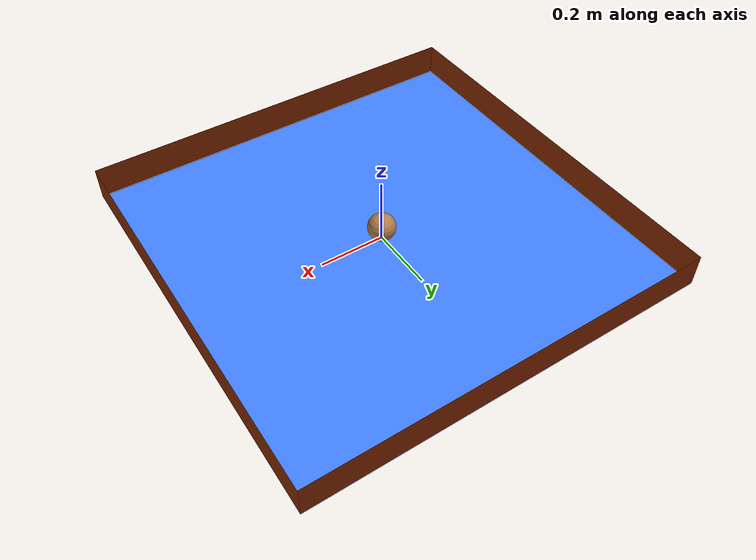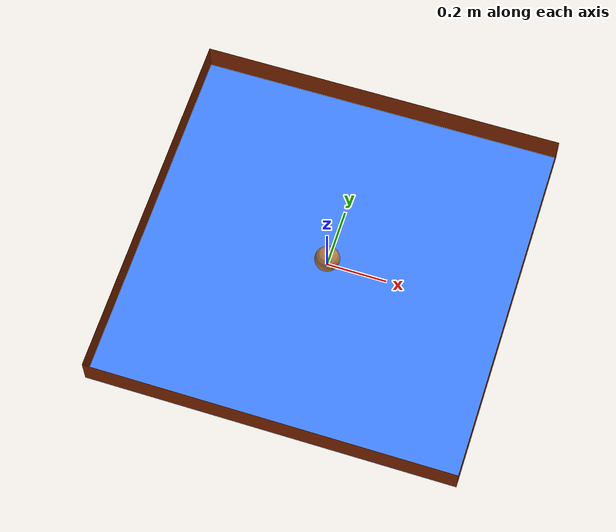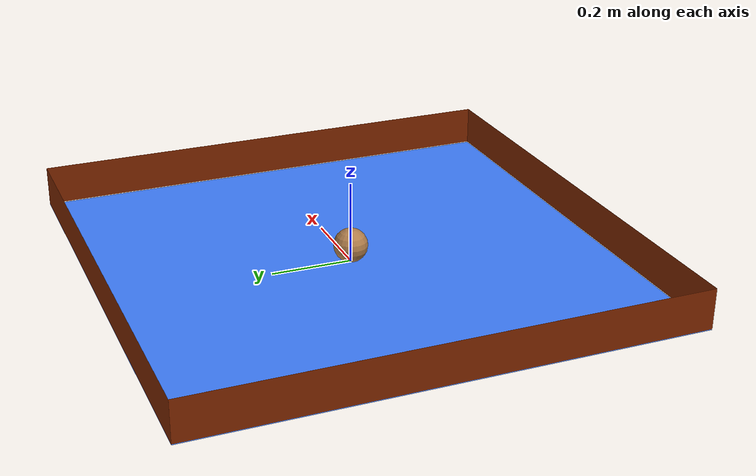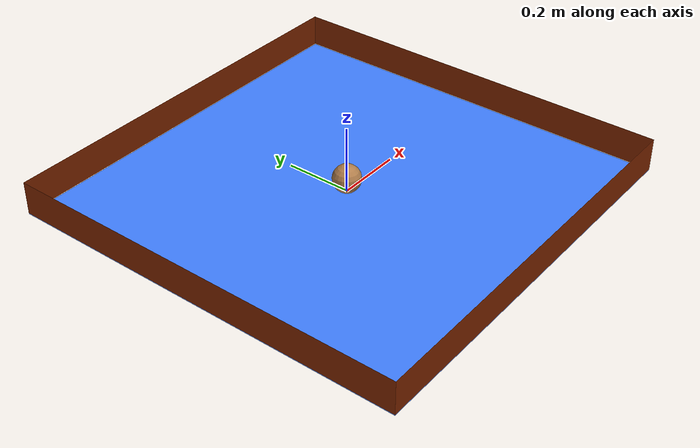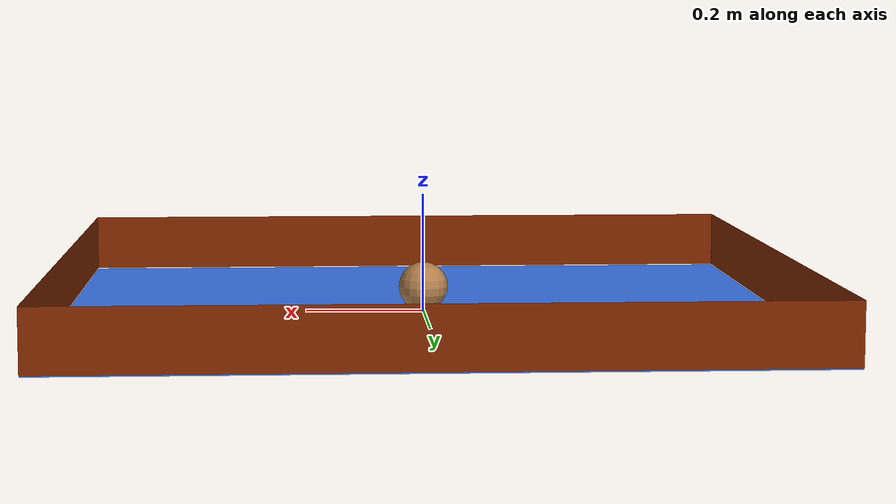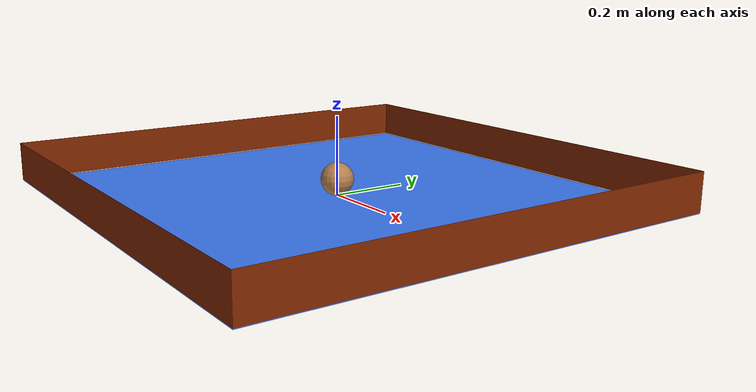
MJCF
<mujoco model="planar point mass">
    <visual>
        <quality shadowsize="2048" />
        <headlight ambient="0.4 0.4 0.4" diffuse="0.8 0.8 0.8" specular="0.1 0.1 0.1" />
    </visual>

    <default class="main">
        <general ctrllimited="true" ctrlrange="-1 1" />
    </default>

    <default class="object">
        <geom material="self"/>
    </default>

    <asset>
        <texture type="skybox" name="skybox" builtin="gradient" mark="random" rgb1="0.4 0.6 0.8" rgb2="0 0 0" markrgb="1 1 1" width="800" height="4800" />
        <texture type="2d" name="grid" builtin="checker" mark="edge" rgb1="0.1 0.2 0.3" rgb2="0.2 0.3 0.4" markrgb="0.2 0.3 0.4" width="300" height="300" />
        <material name="grid" texture="grid" texuniform="true" reflectance="0.2" />
        <material name="self" rgba="0.7 0.5 0.3 1" />
        <material name="self_default" rgba="0.7 0.5 0.3 1" />
        <material name="self_highlight" rgba="0 0.5 0.3 1" />
        <material name="effector" rgba="0.7 0.4 0.2 1" />
        <material name="effector_default" rgba="0.7 0.4 0.2 1" />
        <material name="effector_highlight" rgba="0 0.5 0.3 1" />
        <material name="decoration" rgba="0.3 0.5 0.7 1" />
        <material name="eye" rgba="0 0.2 1 1" />
        <material name="target" rgba="0.6 0.3 0.3 1" />
        <material name="target_default" rgba="0.6 0.3 0.3 1" />
        <material name="target_highlight" rgba="0.6 0.3 0.3 0.4" />
    </asset>

    <option timestep="0.01"> </option>
    <default class="finger">
        <site type="ellipsoid" size=".025 .03 .025" rgba=".5 .5 .5 .3" group="3"/>
    </default>

    <worldbody>
        <geom name="ground" size="0.61 0.61 0.1" pos="-0.0 0 0.0" type="plane" rgba="0.25 0.5 1 1"/>
        <geom name="wall_x" size="0.05 0.61 0.02" pos="-0.61 0 0.05" quat="0.707107 0 0.707107 0" type="plane" rgba="0.5 0.15 0 1"/>
        <geom name="wall_y" size="0.61 0.05 0.02" pos="0 -0.61 0.05" quat="0.707107 -0.707107 0 0" type="plane" rgba="0.5 0.15 0 1"/>
        <geom name="wall_neg_x" size="0.05 0.61 0.02" pos="0.61 0 0.05" quat="0.707107 0 -0.707107 0" type="plane" rgba="0.5 0.15 0 1"/>
        <geom name="wall_neg_y" size="0.61 0.05 0.02" pos="0 0.61 0.05" quat="0.707107 0.707107 0 0" type="plane" rgba="0.5 0.15 0 1"/>
        <camera name="fixed" pos="0 0 0.75" />
        <light name="light" pos="0 0 1" dir="0 0 -1" />

        <body name="pointmass1" pos="-.0 .0 .042">
            <camera name="cam0" pos="0 -0.3 0.3" xyaxes="1 0 0 0 0.7 0.7"/>
            <joint name="root_x" type="slide"  pos="0 0 0" axis="1 0 0" damping="3" frictionloss=".01"/>
            <joint name="root_y" type="slide"  pos="0 0 0" axis="0 1 0" damping="3" frictionloss=".01"/>
            <geom name="pointmass1" type="sphere" size=".042" material="self" mass=".6" condim="4"  group="2" solimp="0.9 0.95 0.001" solref="0.02 1"/>
        </body>

        <body name="pointmass2" pos="-.0 .0 .042">
            <camera name="cam1" pos="0 -0.3 0.3" xyaxes="1 0 0 0 0.7 0.7"/>
            <joint name="root_x2" type="slide"  pos="0 0 0" axis="1 0 0" damping="3" frictionloss=".01"/>
            <joint name="root_y2" type="slide"  pos="0 0 0" axis="0 1 0" damping="3" frictionloss=".01"/>
            <geom name="pointmass2" type="sphere" size=".042" material="self" mass=".6" condim="4"  group="2" solimp="0.9 0.95 0.001" solref="0.02 1"/>
        </body>

    </worldbody>

    <tendon>
        <fixed name="t1">
            <joint joint="root_x" coef="1"/>
            <joint joint="root_y" coef="0"/>
        </fixed>
        <fixed name="t2">
        <joint joint="root_x" coef="0"/>
        <joint joint="root_y" coef="1"/>
        </fixed>
    </tendon>

    <contact>
        <exclude body1="pointmass1" body2="world"/>
        <exclude body1="pointmass2" body2="world"/>
    </contact>

    <actuator>
        <motor name="t1" tendon="t1" gear="1"/>
    </actuator>

</mujoco>
